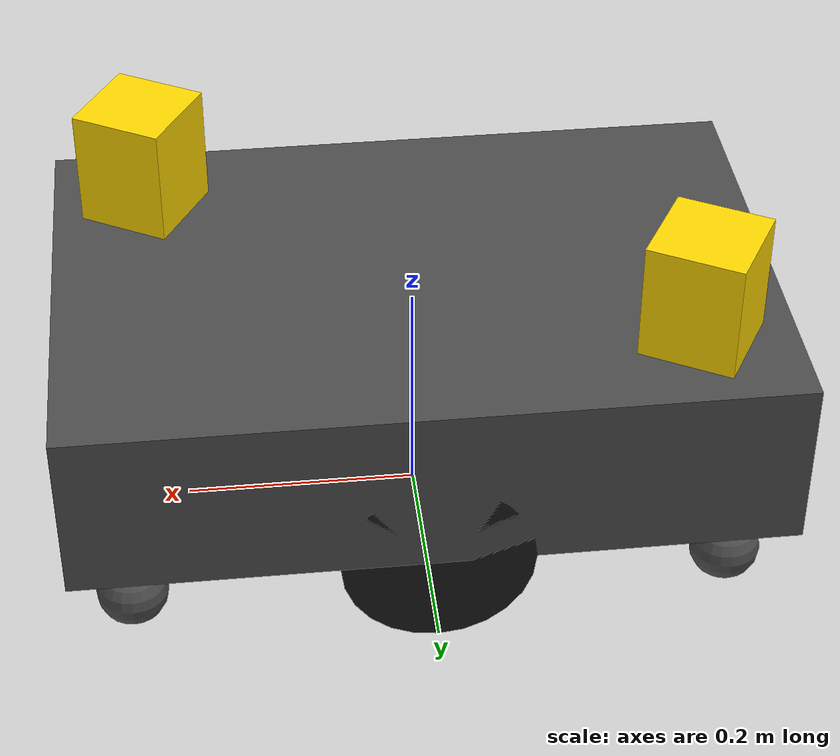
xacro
<?xml version="1.0"?>
<robot xmlns:xacro="http://www.ros.org/wiki/xacro" name="ssbot">

  <!-- ==================== Properties ==================== -->
  <!-- Base dimensions: 600mm x 400mm -->
  <xacro:property name="base_length" value="0.60"/>
  <xacro:property name="base_width" value="0.40"/>
  <xacro:property name="base_height" value="0.15"/>
  <xacro:property name="base_mass" value="15.0"/>

  <!-- Wheel properties -->
  <xacro:property name="wheel_radius" value="0.08"/>
  <xacro:property name="wheel_width" value="0.05"/>
  <xacro:property name="wheel_mass" value="0.8"/>
  <xacro:property name="wheel_separation" value="0.35"/>
  <xacro:property name="wheel_offset_x" value="0.0"/>
  <xacro:property name="wheel_offset_z" value="${-base_height/2}"/>

  <!-- Caster properties (4 corners) -->
  <xacro:property name="caster_radius" value="0.03"/>
  <xacro:property name="caster_mass" value="0.2"/>
  <xacro:property name="caster_offset_x" value="0.25"/>
  <xacro:property name="caster_offset_y" value="0.15"/>
  <!-- Caster z: caster center should be at caster_radius from ground -->
  <xacro:property name="caster_offset_z" value="${caster_radius - wheel_radius - base_height/2}"/>

  <!-- SICK NanoScan3 properties -->
  <!-- Dimensions: 80mm x 80mm x 101mm -->
  <xacro:property name="lidar_size_x" value="0.08"/>
  <xacro:property name="lidar_size_y" value="0.08"/>
  <xacro:property name="lidar_size_z" value="0.101"/>
  <xacro:property name="lidar_mass" value="0.5"/>

  <!-- LiDAR positions (1 o'clock and 7 o'clock) -->
  <!-- 1 o'clock: front-right corner -->
  <xacro:property name="lidar_front_x" value="0.22"/>
  <xacro:property name="lidar_front_y" value="-0.12"/>
  <xacro:property name="lidar_front_yaw" value="${-pi/6}"/>

  <!-- 7 o'clock: rear-left corner -->
  <xacro:property name="lidar_rear_x" value="-0.22"/>
  <xacro:property name="lidar_rear_y" value="0.12"/>
  <xacro:property name="lidar_rear_yaw" value="${5*pi/6}"/>

  <!-- ==================== Materials ==================== -->
  <material name="dark_gray">
    <color rgba="0.3 0.3 0.3 1.0"/>
  </material>
  <material name="black">
    <color rgba="0.1 0.1 0.1 1.0"/>
  </material>
  <material name="sick_yellow">
    <color rgba="1.0 0.85 0.0 1.0"/>
  </material>

  <!-- ==================== Inertia Macros ==================== -->
  <xacro:macro name="box_inertia" params="m x y z">
    <inertial>
      <mass value="${m}"/>
      <inertia ixx="${m*(y*y+z*z)/12}" ixy="0" ixz="0"
               iyy="${m*(x*x+z*z)/12}" iyz="0"
               izz="${m*(x*x+y*y)/12}"/>
    </inertial>
  </xacro:macro>

  <xacro:macro name="cylinder_inertia" params="m r h">
    <inertial>
      <mass value="${m}"/>
      <inertia ixx="${m*(3*r*r+h*h)/12}" ixy="0" ixz="0"
               iyy="${m*(3*r*r+h*h)/12}" iyz="0"
               izz="${m*r*r/2}"/>
    </inertial>
  </xacro:macro>

  <xacro:macro name="sphere_inertia" params="m r">
    <inertial>
      <mass value="${m}"/>
      <inertia ixx="${2*m*r*r/5}" ixy="0" ixz="0"
               iyy="${2*m*r*r/5}" iyz="0"
               izz="${2*m*r*r/5}"/>
    </inertial>
  </xacro:macro>

  <!-- ==================== Wheel Macro ==================== -->
  <xacro:macro name="wheel" params="prefix side_reflect">
    <link name="${prefix}_wheel_link">
      <visual>
        <geometry>
          <cylinder radius="${wheel_radius}" length="${wheel_width}"/>
        </geometry>
        <origin xyz="0 0 0" rpy="${pi/2} 0 0"/>
        <material name="black"/>
      </visual>
      <collision>
        <geometry>
          <cylinder radius="${wheel_radius}" length="${wheel_width}"/>
        </geometry>
        <origin xyz="0 0 0" rpy="${pi/2} 0 0"/>
      </collision>
      <xacro:cylinder_inertia m="${wheel_mass}" r="${wheel_radius}" h="${wheel_width}"/>
    </link>

    <joint name="${prefix}_wheel_joint" type="continuous">
      <parent link="base_link"/>
      <child link="${prefix}_wheel_link"/>
      <origin xyz="${wheel_offset_x} ${side_reflect * wheel_separation/2} ${wheel_offset_z}" rpy="0 0 0"/>
      <axis xyz="0 1 0"/>
      <dynamics damping="0.1" friction="0.1"/>
    </joint>
  </xacro:macro>

  <!-- ==================== Caster Macro ==================== -->
  <xacro:macro name="caster" params="prefix x_reflect y_reflect">
    <link name="${prefix}_caster_link">
      <visual>
        <geometry>
          <sphere radius="${caster_radius}"/>
        </geometry>
        <material name="dark_gray"/>
      </visual>
      <collision>
        <geometry>
          <sphere radius="${caster_radius}"/>
        </geometry>
      </collision>
      <xacro:sphere_inertia m="${caster_mass}" r="${caster_radius}"/>
    </link>

    <joint name="${prefix}_caster_joint" type="fixed">
      <parent link="base_link"/>
      <child link="${prefix}_caster_link"/>
      <origin xyz="${x_reflect * caster_offset_x} ${y_reflect * caster_offset_y} ${caster_offset_z}" rpy="0 0 0"/>
    </joint>
  </xacro:macro>

  <!-- ==================== NanoScan3 LiDAR Macro ==================== -->
  <xacro:macro name="nanoscan3" params="prefix x y yaw topic">
    <link name="${prefix}_lidar_link">
      <visual>
        <geometry>
          <box size="${lidar_size_x} ${lidar_size_y} ${lidar_size_z}"/>
        </geometry>
        <origin xyz="0 0 0" rpy="0 0 0"/>
        <material name="sick_yellow"/>
      </visual>
      <collision>
        <geometry>
          <box size="${lidar_size_x} ${lidar_size_y} ${lidar_size_z}"/>
        </geometry>
        <origin xyz="0 0 0" rpy="0 0 0"/>
      </collision>
      <xacro:box_inertia m="${lidar_mass}" x="${lidar_size_x}" y="${lidar_size_y}" z="${lidar_size_z}"/>
    </link>

    <joint name="${prefix}_lidar_joint" type="fixed">
      <parent link="base_link"/>
      <child link="${prefix}_lidar_link"/>
      <origin xyz="${x} ${y} ${base_height/2 + lidar_size_z/2}" rpy="0 0 ${yaw}"/>
    </joint>

    <!-- Scan frame at the top of the LiDAR -->
    <link name="${prefix}_laser_frame"/>

    <joint name="${prefix}_laser_joint" type="fixed">
      <parent link="${prefix}_lidar_link"/>
      <child link="${prefix}_laser_frame"/>
      <origin xyz="0 0 ${lidar_size_z/2}" rpy="0 0 0"/>
    </joint>
  </xacro:macro>

  <!-- ==================== Base Footprint ==================== -->
  <link name="base_footprint"/>

  <!-- ==================== Base Link ==================== -->
  <link name="base_link">
    <visual>
      <geometry>
        <box size="${base_length} ${base_width} ${base_height}"/>
      </geometry>
      <material name="dark_gray"/>
    </visual>
    <collision>
      <geometry>
        <box size="${base_length} ${base_width} ${base_height}"/>
      </geometry>
    </collision>
    <xacro:box_inertia m="${base_mass}" x="${base_length}" y="${base_width}" z="${base_height}"/>
  </link>

  <joint name="base_footprint_joint" type="fixed">
    <parent link="base_footprint"/>
    <child link="base_link"/>
    <origin xyz="0 0 ${wheel_radius + base_height/2}" rpy="0 0 0"/>
  </joint>

  <!-- ==================== Wheels ==================== -->
  <xacro:wheel prefix="left" side_reflect="1"/>
  <xacro:wheel prefix="right" side_reflect="-1"/>

  <!-- ==================== Casters (4 corners) ==================== -->
  <xacro:caster prefix="front_left" x_reflect="1" y_reflect="1"/>
  <xacro:caster prefix="front_right" x_reflect="1" y_reflect="-1"/>
  <xacro:caster prefix="rear_left" x_reflect="-1" y_reflect="1"/>
  <xacro:caster prefix="rear_right" x_reflect="-1" y_reflect="-1"/>

  <!-- ==================== NanoScan3 LiDARs ==================== -->
  <!-- Front-right LiDAR (1 o'clock position) -->
  <xacro:nanoscan3 prefix="front"
                   x="${lidar_front_x}"
                   y="${lidar_front_y}"
                   yaw="${lidar_front_yaw}"
                   topic="scan_front"/>

  <!-- Rear-left LiDAR (7 o'clock position) -->
  <xacro:nanoscan3 prefix="rear"
                   x="${lidar_rear_x}"
                   y="${lidar_rear_y}"
                   yaw="${lidar_rear_yaw}"
                   topic="scan_rear"/>

  <!-- ==================== IMU ==================== -->
  <link name="imu_link"/>

  <joint name="imu_joint" type="fixed">
    <parent link="base_link"/>
    <child link="imu_link"/>
    <origin xyz="0 0 0" rpy="0 0 0"/>
  </joint>

  <!-- ==================== Gazebo Plugins ==================== -->
  <xacro:include filename="$(find ssbot_description)/urdf/gazebo.xacro"/>

</robot>
